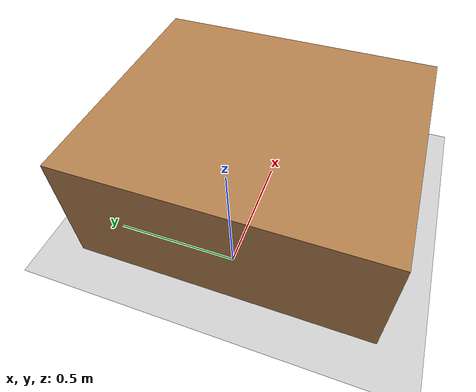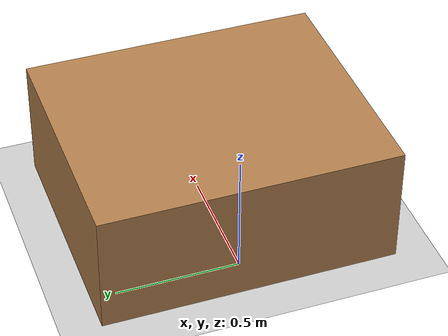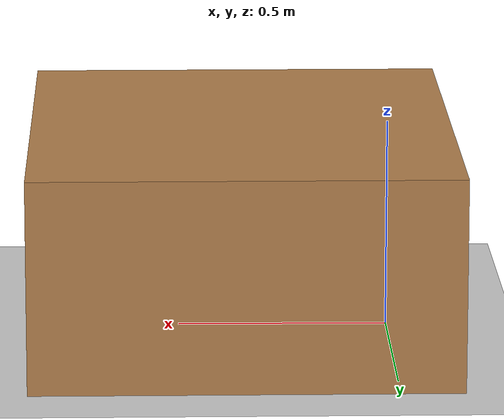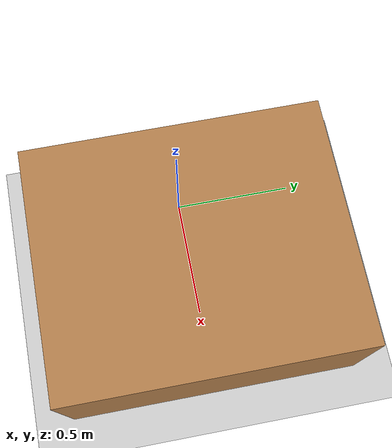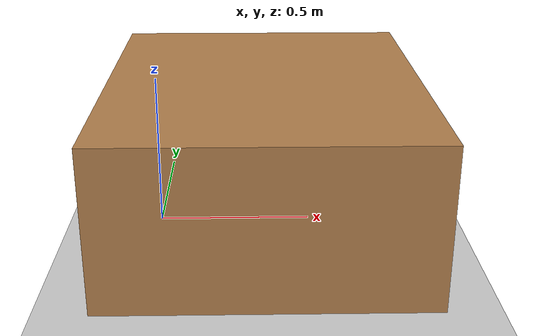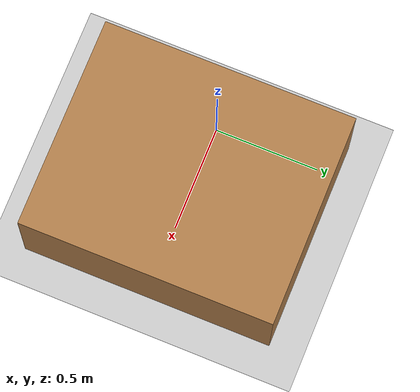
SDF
<?xml version="1.0" ?>
<sdf version="1.6">
  <world name="push_t_world">
    <include><uri>model://sun</uri></include>
    <include><uri>model://ground_plane</uri></include>

    <light name="table_spotlight" type="directional">
      <cast_shadows>true</cast_shadows>
      <pose>0.35 0 2.5 0 0 0</pose> <diffuse>0.8 0.8 0.7 1</diffuse> <specular>0.3 0.3 0.3 1</specular> <attenuation>
        <range>5</range>
        <constant>0.9</constant>
        <linear>0.01</linear>
        <quadratic>0.001</quadratic>
      </attenuation>
      <direction>0 0 -1</direction>
    </light>

    <model name="surface_table">
      <static>true</static>
      <pose>0.35 0 0.25 0 0 0</pose>
      <link name="table_link">
        <collision name="collision">
          <geometry><box><size>1.0 1.2 0.5</size></box></geometry>
          <surface>
            <friction>
              <ode>
                <mu>0.1</mu>
                <mu2>0.1</mu2>
              </ode>
            </friction>
          </surface>
        </collision>

        <visual name="visual">
          <geometry><box><size>1.0 1.2 0.5</size></box></geometry>
          <material>
            <script>
              <uri>file://media/materials/scripts/gazebo.material</uri>
              <name>Gazebo/Wood</name>
            </script>
          </material>
        </visual>
      </link>
    </model>
  </world>
</sdf>
